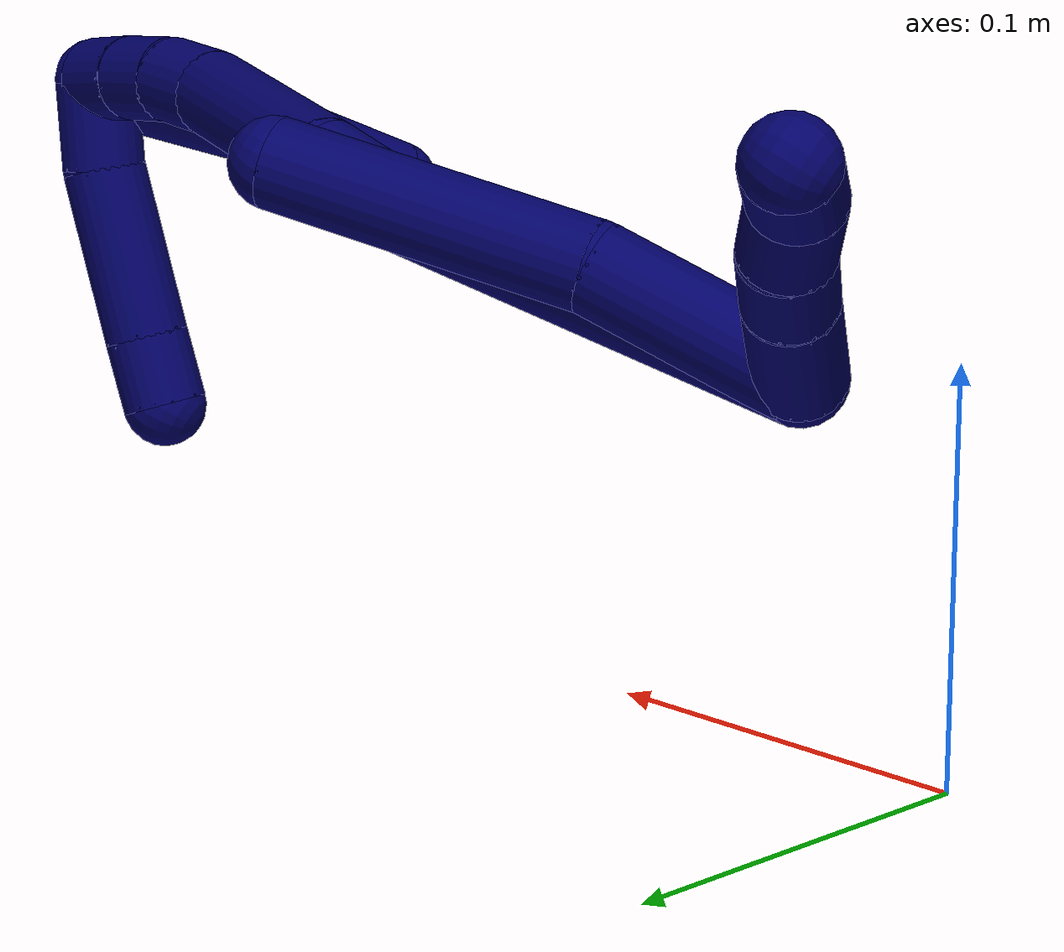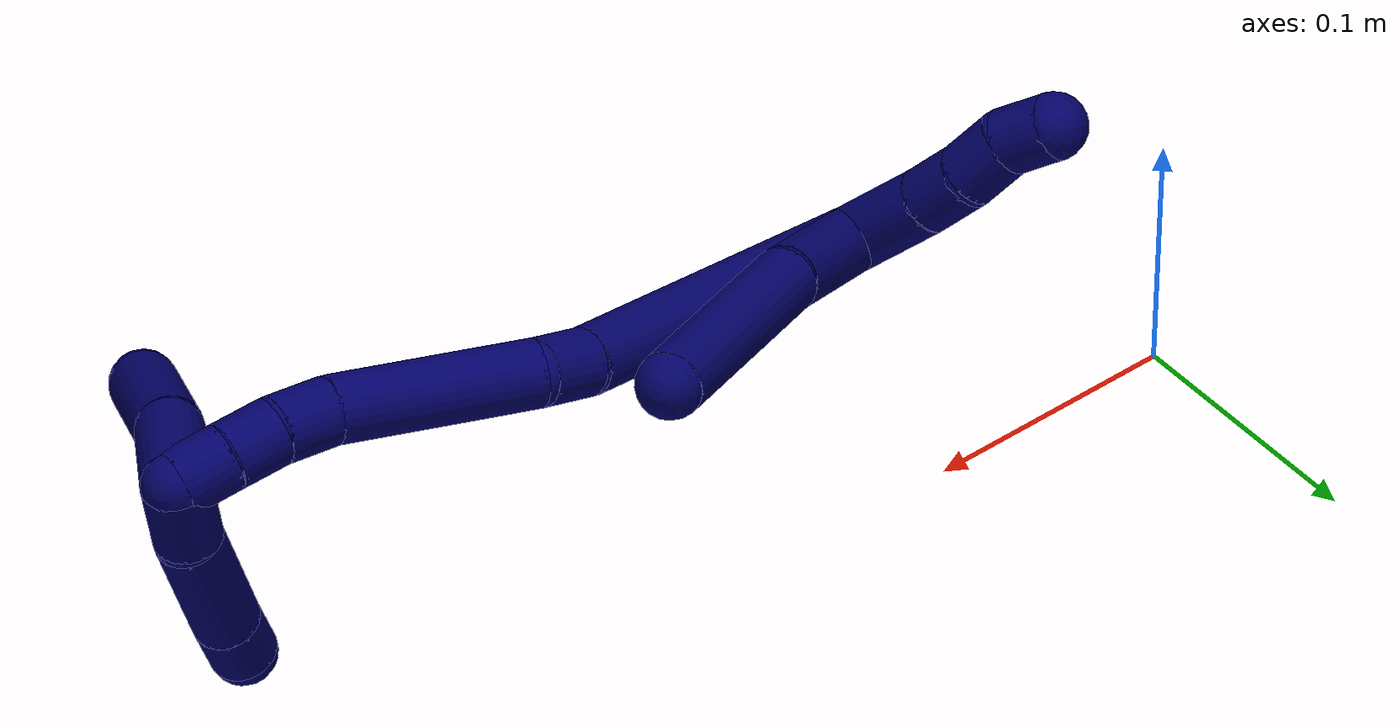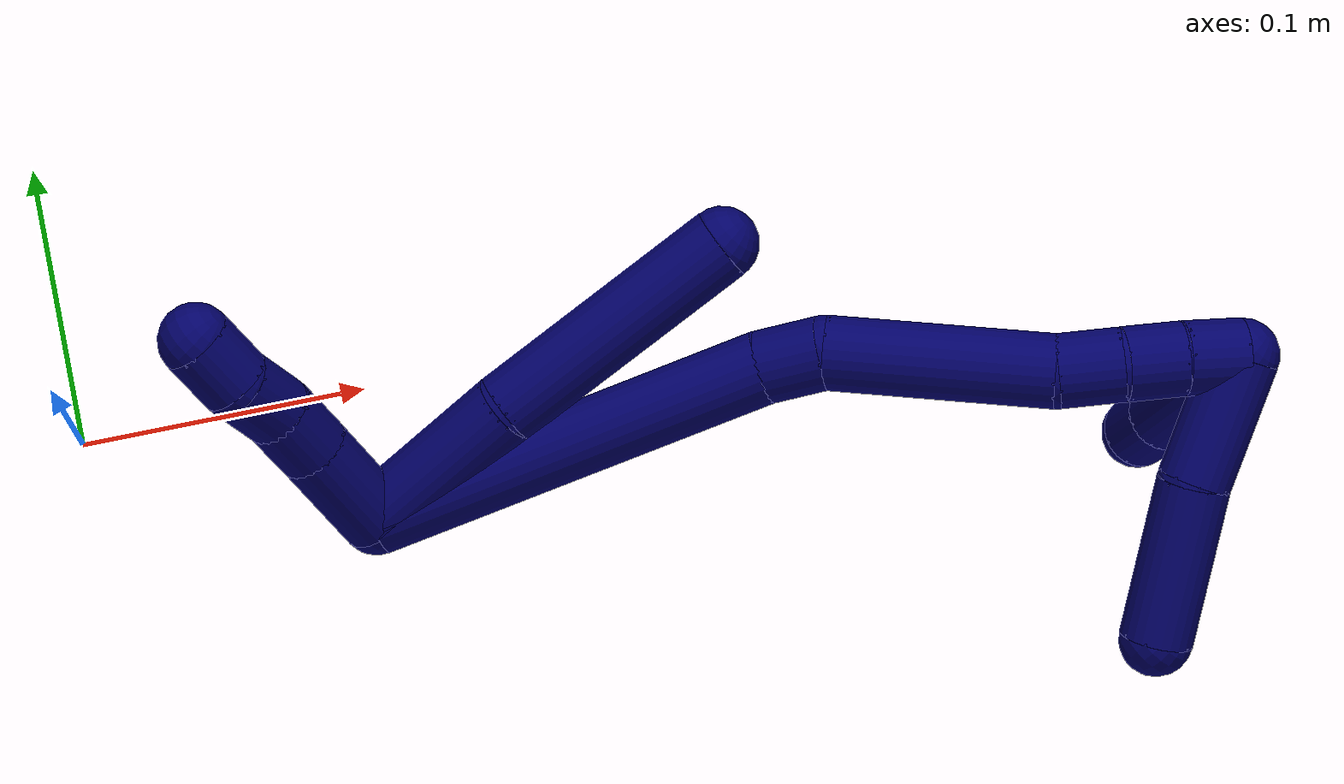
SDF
<sdf version="1.7">
 <world name="default">
  <model name="7">
   <static>0</static>
   <link name="7">
    <collision name="collision-cylinder-e_1_2_8">
     <pose>0.00272 0.000692 0.029652 -0.02332 0.09145 -0.001067</pose>
     <geometry><cylinder><radius>0.0125</radius><length>0.05957</length></cylinder></geometry>
     <surface>
      <friction><ode><mu>1.16</mu><mu2>1.16</mu2><slip1>0</slip1><slip2>0</slip2></ode></friction>
      <contact><ode><kp>1e+06</kp><kd>1</kd><max_vel>0</max_vel><min_depth>0.001</min_depth></ode></contact>
     </surface>
    </collision>
    <visual name="visual-cylinder-e_1_2_8">
     <pose>0.00272 0.000692 0.029652 -0.02332 0.09145 -0.001067</pose>
     <geometry><cylinder><radius>0.0125</radius><length>0.05957</length></cylinder></geometry>
     <material><ambient>0.003922 0 0.403922 1</ambient></material>
    </visual>
    <collision name="collision-cylinder-e_2_8_6">
     <pose>0.016732 0.006585 0.102777 -0.119084 0.252399 -0.015126</pose>
     <geometry><cylinder><radius>0.0125</radius><length>0.09043</length></cylinder></geometry>
     <surface>
      <friction><ode><mu>1.16</mu><mu2>1.16</mu2><slip1>0</slip1><slip2>0</slip2></ode></friction>
      <contact><ode><kp>1e+06</kp><kd>1</kd><max_vel>0</max_vel><min_depth>0.001</min_depth></ode></contact>
     </surface>
    </collision>
    <visual name="visual-cylinder-e_2_8_6">
     <pose>0.016732 0.006585 0.102777 -0.119084 0.252399 -0.015126</pose>
     <geometry><cylinder><radius>0.0125</radius><length>0.09043</length></cylinder></geometry>
     <material><ambient>0.003922 0 0.403922 1</ambient></material>
    </visual>
    <collision name="collision-cylinder-e_1_2_9">
     <pose>-0.017896 0.003664 0.004578 -0.674944 -1.25416 0.497999</pose>
     <geometry><cylinder><radius>0.0125</radius><length>0.037665</length></cylinder></geometry>
     <surface>
      <friction><ode><mu>1.16</mu><mu2>1.16</mu2><slip1>0</slip1><slip2>0</slip2></ode></friction>
      <contact><ode><kp>1e+06</kp><kd>1</kd><max_vel>0</max_vel><min_depth>0.001</min_depth></ode></contact>
     </surface>
    </collision>
    <visual name="visual-cylinder-e_1_2_9">
     <pose>-0.017896 0.003664 0.004578 -0.674944 -1.25416 0.497999</pose>
     <geometry><cylinder><radius>0.0125</radius><length>0.037665</length></cylinder></geometry>
     <material><ambient>0.003922 0 0.403922 1</ambient></material>
    </visual>
    <collision name="collision-cylinder-e_2_9_10">
     <pose>-0.045725 0.008758 0.01174 -0.505365 -1.28185 0.380566</pose>
     <geometry><cylinder><radius>0.0125</radius><length>0.020724</length></cylinder></geometry>
     <surface>
      <friction><ode><mu>1.16</mu><mu2>1.16</mu2><slip1>0</slip1><slip2>0</slip2></ode></friction>
      <contact><ode><kp>1e+06</kp><kd>1</kd><max_vel>0</max_vel><min_depth>0.001</min_depth></ode></contact>
     </surface>
    </collision>
    <visual name="visual-cylinder-e_2_9_10">
     <pose>-0.045725 0.008758 0.01174 -0.505365 -1.28185 0.380566</pose>
     <geometry><cylinder><radius>0.0125</radius><length>0.020724</length></cylinder></geometry>
     <material><ambient>0.003922 0 0.403922 1</ambient></material>
    </visual>
    <collision name="collision-cylinder-e_3_10_11">
     <pose>-0.06622 0.01035 0.015737 -0.114583 -1.43688 0.100207</pose>
     <geometry><cylinder><radius>0.0125</radius><length>0.021317</length></cylinder></geometry>
     <surface>
      <friction><ode><mu>1.16</mu><mu2>1.16</mu2><slip1>0</slip1><slip2>0</slip2></ode></friction>
      <contact><ode><kp>1e+06</kp><kd>1</kd><max_vel>0</max_vel><min_depth>0.001</min_depth></ode></contact>
     </surface>
    </collision>
    <visual name="visual-cylinder-e_3_10_11">
     <pose>-0.06622 0.01035 0.015737 -0.114583 -1.43688 0.100207</pose>
     <geometry><cylinder><radius>0.0125</radius><length>0.021317</length></cylinder></geometry>
     <material><ambient>0.003922 0 0.403922 1</ambient></material>
    </visual>
    <collision name="collision-cylinder-e_4_11_5">
     <pose>-0.086183 0.013912 0.018899 -1.09574 -1.18455 0.779156</pose>
     <geometry><cylinder><radius>0.0125</radius><length>0.020294</length></cylinder></geometry>
     <surface>
      <friction><ode><mu>1.16</mu><mu2>1.16</mu2><slip1>0</slip1><slip2>0</slip2></ode></friction>
      <contact><ode><kp>1e+06</kp><kd>1</kd><max_vel>0</max_vel><min_depth>0.001</min_depth></ode></contact>
     </surface>
    </collision>
    <visual name="visual-cylinder-e_4_11_5">
     <pose>-0.086183 0.013912 0.018899 -1.09574 -1.18455 0.779156</pose>
     <geometry><cylinder><radius>0.0125</radius><length>0.020294</length></cylinder></geometry>
     <material><ambient>0.003922 0 0.403922 1</ambient></material>
    </visual>
    <collision name="collision-cylinder-e_1_2_12">
     <pose>0.028169 -0.007598 0.063567 0.118961 0.414513 0.025043</pose>
     <geometry><cylinder><radius>0.0125</radius><length>0.139886</length></cylinder></geometry>
     <surface>
      <friction><ode><mu>1.16</mu><mu2>1.16</mu2><slip1>0</slip1><slip2>0</slip2></ode></friction>
      <contact><ode><kp>1e+06</kp><kd>1</kd><max_vel>0</max_vel><min_depth>0.001</min_depth></ode></contact>
     </surface>
    </collision>
    <visual name="visual-cylinder-e_1_2_12">
     <pose>0.028169 -0.007598 0.063567 0.118961 0.414513 0.025043</pose>
     <geometry><cylinder><radius>0.0125</radius><length>0.139886</length></cylinder></geometry>
     <material><ambient>0.003922 0 0.403922 1</ambient></material>
    </visual>
    <collision name="collision-cylinder-e_2_12_13">
     <pose>0.060658 -0.018118 0.136512 0.302126 0.414346 0.063969</pose>
     <geometry><cylinder><radius>0.0125</radius><length>0.02146</length></cylinder></geometry>
     <surface>
      <friction><ode><mu>1.16</mu><mu2>1.16</mu2><slip1>0</slip1><slip2>0</slip2></ode></friction>
      <contact><ode><kp>1e+06</kp><kd>1</kd><max_vel>0</max_vel><min_depth>0.001</min_depth></ode></contact>
     </surface>
    </collision>
    <visual name="visual-cylinder-e_2_12_13">
     <pose>0.060658 -0.018118 0.136512 0.302126 0.414346 0.063969</pose>
     <geometry><cylinder><radius>0.0125</radius><length>0.02146</length></cylinder></geometry>
     <material><ambient>0.003922 0 0.403922 1</ambient></material>
    </visual>
    <collision name="collision-cylinder-e_3_13_14">
     <pose>0.089019 -0.03663 0.171243 0.551261 0.679442 0.199255</pose>
     <geometry><cylinder><radius>0.0125</radius><length>0.076519</length></cylinder></geometry>
     <surface>
      <friction><ode><mu>1.16</mu><mu2>1.16</mu2><slip1>0</slip1><slip2>0</slip2></ode></friction>
      <contact><ode><kp>1e+06</kp><kd>1</kd><max_vel>0</max_vel><min_depth>0.001</min_depth></ode></contact>
     </surface>
    </collision>
    <visual name="visual-cylinder-e_3_13_14">
     <pose>0.089019 -0.03663 0.171243 0.551261 0.679442 0.199255</pose>
     <geometry><cylinder><radius>0.0125</radius><length>0.076519</length></cylinder></geometry>
     <material><ambient>0.003922 0 0.403922 1</ambient></material>
    </visual>
    <collision name="collision-cylinder-e_4_14_15">
     <pose>0.119797 -0.054709 0.204853 0.293003 0.663274 0.101538</pose>
     <geometry><cylinder><radius>0.0125</radius><length>0.021887</length></cylinder></geometry>
     <surface>
      <friction><ode><mu>1.16</mu><mu2>1.16</mu2><slip1>0</slip1><slip2>0</slip2></ode></friction>
      <contact><ode><kp>1e+06</kp><kd>1</kd><max_vel>0</max_vel><min_depth>0.001</min_depth></ode></contact>
     </surface>
    </collision>
    <visual name="visual-cylinder-e_4_14_15">
     <pose>0.119797 -0.054709 0.204853 0.293003 0.663274 0.101538</pose>
     <geometry><cylinder><radius>0.0125</radius><length>0.021887</length></cylinder></geometry>
     <material><ambient>0.003922 0 0.403922 1</ambient></material>
    </visual>
    <collision name="collision-cylinder-e_5_15_16">
     <pose>0.133694 -0.058457 0.219999 0.180493 0.796301 0.076088</pose>
     <geometry><cylinder><radius>0.0125</radius><length>0.020031</length></cylinder></geometry>
     <surface>
      <friction><ode><mu>1.16</mu><mu2>1.16</mu2><slip1>0</slip1><slip2>0</slip2></ode></friction>
      <contact><ode><kp>1e+06</kp><kd>1</kd><max_vel>0</max_vel><min_depth>0.001</min_depth></ode></contact>
     </surface>
    </collision>
    <visual name="visual-cylinder-e_5_15_16">
     <pose>0.133694 -0.058457 0.219999 0.180493 0.796301 0.076088</pose>
     <geometry><cylinder><radius>0.0125</radius><length>0.020031</length></cylinder></geometry>
     <material><ambient>0.003922 0 0.403922 1</ambient></material>
    </visual>
    <collision name="collision-cylinder-e_6_16_1">
     <pose>0.148539 -0.060946 0.233338 0.18873 0.86394 0.08721</pose>
     <geometry><cylinder><radius>0.0125</radius><length>0.020217</length></cylinder></geometry>
     <surface>
      <friction><ode><mu>1.16</mu><mu2>1.16</mu2><slip1>0</slip1><slip2>0</slip2></ode></friction>
      <contact><ode><kp>1e+06</kp><kd>1</kd><max_vel>0</max_vel><min_depth>0.001</min_depth></ode></contact>
     </surface>
    </collision>
    <visual name="visual-cylinder-e_6_16_1">
     <pose>0.148539 -0.060946 0.233338 0.18873 0.86394 0.08721</pose>
     <geometry><cylinder><radius>0.0125</radius><length>0.020217</length></cylinder></geometry>
     <material><ambient>0.003922 0 0.403922 1</ambient></material>
    </visual>
    <collision name="collision-cylinder-e_1_1_17">
     <pose>0.16421 -0.054674 0.232221 -2.36027 0.643014 -1.3601</pose>
     <geometry><cylinder><radius>0.0125</radius><length>0.026629</length></cylinder></geometry>
     <surface>
      <friction><ode><mu>1.16</mu><mu2>1.16</mu2><slip1>0</slip1><slip2>0</slip2></ode></friction>
      <contact><ode><kp>1e+06</kp><kd>1</kd><max_vel>0</max_vel><min_depth>0.001</min_depth></ode></contact>
     </surface>
    </collision>
    <visual name="visual-cylinder-e_1_1_17">
     <pose>0.16421 -0.054674 0.232221 -2.36027 0.643014 -1.3601</pose>
     <geometry><cylinder><radius>0.0125</radius><length>0.026629</length></cylinder></geometry>
     <material><ambient>0.003922 0 0.403922 1</ambient></material>
    </visual>
    <collision name="collision-cylinder-e_2_17_18">
     <pose>0.185148 -0.03416 0.206097 -2.53018 0.519263 -1.39927</pose>
     <geometry><cylinder><radius>0.0125</radius><length>0.052211</length></cylinder></geometry>
     <surface>
      <friction><ode><mu>1.16</mu><mu2>1.16</mu2><slip1>0</slip1><slip2>0</slip2></ode></friction>
      <contact><ode><kp>1e+06</kp><kd>1</kd><max_vel>0</max_vel><min_depth>0.001</min_depth></ode></contact>
     </surface>
    </collision>
    <visual name="visual-cylinder-e_2_17_18">
     <pose>0.185148 -0.03416 0.206097 -2.53018 0.519263 -1.39927</pose>
     <geometry><cylinder><radius>0.0125</radius><length>0.052211</length></cylinder></geometry>
     <material><ambient>0.003922 0 0.403922 1</ambient></material>
    </visual>
    <collision name="collision-cylinder-e_3_18_4">
     <pose>0.203013 -0.015826 0.179827 -2.53727 0.482655 -1.33674</pose>
     <geometry><cylinder><radius>0.0125</radius><length>0.02116</length></cylinder></geometry>
     <surface>
      <friction><ode><mu>1.16</mu><mu2>1.16</mu2><slip1>0</slip1><slip2>0</slip2></ode></friction>
      <contact><ode><kp>1e+06</kp><kd>1</kd><max_vel>0</max_vel><min_depth>0.001</min_depth></ode></contact>
     </surface>
    </collision>
    <visual name="visual-cylinder-e_3_18_4">
     <pose>0.203013 -0.015826 0.179827 -2.53727 0.482655 -1.33674</pose>
     <geometry><cylinder><radius>0.0125</radius><length>0.02116</length></cylinder></geometry>
     <material><ambient>0.003922 0 0.403922 1</ambient></material>
    </visual>
    <collision name="collision-cylinder-e_1_1_19">
     <pose>0.160229 -0.072529 0.220346 2.6523 0.179795 0.693006</pose>
     <geometry><cylinder><radius>0.0125</radius><length>0.044771</length></cylinder></geometry>
     <surface>
      <friction><ode><mu>1.16</mu><mu2>1.16</mu2><slip1>0</slip1><slip2>0</slip2></ode></friction>
      <contact><ode><kp>1e+06</kp><kd>1</kd><max_vel>0</max_vel><min_depth>0.001</min_depth></ode></contact>
     </surface>
    </collision>
    <visual name="visual-cylinder-e_1_1_19">
     <pose>0.160229 -0.072529 0.220346 2.6523 0.179795 0.693006</pose>
     <geometry><cylinder><radius>0.0125</radius><length>0.044771</length></cylinder></geometry>
     <material><ambient>0.003922 0 0.403922 1</ambient></material>
    </visual>
    <collision name="collision-cylinder-e_2_19_3">
     <pose>0.17387 -0.095013 0.178047 2.65365 0.356524 1.25303</pose>
     <geometry><cylinder><radius>0.0125</radius><length>0.055229</length></cylinder></geometry>
     <surface>
      <friction><ode><mu>1.16</mu><mu2>1.16</mu2><slip1>0</slip1><slip2>0</slip2></ode></friction>
      <contact><ode><kp>1e+06</kp><kd>1</kd><max_vel>0</max_vel><min_depth>0.001</min_depth></ode></contact>
     </surface>
    </collision>
    <visual name="visual-cylinder-e_2_19_3">
     <pose>0.17387 -0.095013 0.178047 2.65365 0.356524 1.25303</pose>
     <geometry><cylinder><radius>0.0125</radius><length>0.055229</length></cylinder></geometry>
     <material><ambient>0.003922 0 0.403922 1</ambient></material>
    </visual>
    <collision name="collision-sphere-3">
     <pose>0.183508 -0.107145 0.155189 0 -0 0</pose>
     <geometry><sphere><radius>0.0125</radius></sphere></geometry>
     <surface>
      <friction><ode><mu>1.16</mu><mu2>1.16</mu2><slip1>0</slip1><slip2>0</slip2></ode></friction>
      <contact><ode><kp>1e+06</kp><kd>1</kd><max_vel>0</max_vel><min_depth>0.001</min_depth></ode></contact>
     </surface>
    </collision>
    <visual name="visual-sphere-3">
     <pose>0.183508 -0.107145 0.155189 0 -0 0</pose>
     <geometry><sphere><radius>0.0125</radius></sphere></geometry>
     <material><ambient>0.003922 0 0.403922 1</ambient></material>
    </visual>
    <collision name="collision-sphere-19">
     <pose>0.164232 -0.082881 0.200905 0 -0 0</pose>
     <geometry><sphere><radius>0.0125</radius></sphere></geometry>
     <surface>
      <friction><ode><mu>1.16</mu><mu2>1.16</mu2><slip1>0</slip1><slip2>0</slip2></ode></friction>
      <contact><ode><kp>1e+06</kp><kd>1</kd><max_vel>0</max_vel><min_depth>0.001</min_depth></ode></contact>
     </surface>
    </collision>
    <visual name="visual-sphere-19">
     <pose>0.164232 -0.082881 0.200905 0 -0 0</pose>
     <geometry><sphere><radius>0.0125</radius></sphere></geometry>
     <material><ambient>0.003922 0 0.403922 1</ambient></material>
    </visual>
    <collision name="collision-sphere-11">
     <pose>-0.076783 0.010512 0.017151 0 -0 0</pose>
     <geometry><sphere><radius>0.0125</radius></sphere></geometry>
     <surface>
      <friction><ode><mu>1.16</mu><mu2>1.16</mu2><slip1>0</slip1><slip2>0</slip2></ode></friction>
      <contact><ode><kp>1e+06</kp><kd>1</kd><max_vel>0</max_vel><min_depth>0.001</min_depth></ode></contact>
     </surface>
    </collision>
    <visual name="visual-sphere-11">
     <pose>-0.076783 0.010512 0.017151 0 -0 0</pose>
     <geometry><sphere><radius>0.0125</radius></sphere></geometry>
     <material><ambient>0.003922 0 0.403922 1</ambient></material>
    </visual>
    <collision name="collision-sphere-10">
     <pose>-0.055657 0.010187 0.014323 0 -0 0</pose>
     <geometry><sphere><radius>0.0125</radius></sphere></geometry>
     <surface>
      <friction><ode><mu>1.16</mu><mu2>1.16</mu2><slip1>0</slip1><slip2>0</slip2></ode></friction>
      <contact><ode><kp>1e+06</kp><kd>1</kd><max_vel>0</max_vel><min_depth>0.001</min_depth></ode></contact>
     </surface>
    </collision>
    <visual name="visual-sphere-10">
     <pose>-0.055657 0.010187 0.014323 0 -0 0</pose>
     <geometry><sphere><radius>0.0125</radius></sphere></geometry>
     <material><ambient>0.003922 0 0.403922 1</ambient></material>
    </visual>
    <collision name="collision-sphere-6">
     <pose>0.028023 0.011786 0.14625 0 -0 0</pose>
     <geometry><sphere><radius>0.0125</radius></sphere></geometry>
     <surface>
      <friction><ode><mu>1.16</mu><mu2>1.16</mu2><slip1>0</slip1><slip2>0</slip2></ode></friction>
      <contact><ode><kp>1e+06</kp><kd>1</kd><max_vel>0</max_vel><min_depth>0.001</min_depth></ode></contact>
     </surface>
    </collision>
    <visual name="visual-sphere-6">
     <pose>0.028023 0.011786 0.14625 0 -0 0</pose>
     <geometry><sphere><radius>0.0125</radius></sphere></geometry>
     <material><ambient>0.003922 0 0.403922 1</ambient></material>
    </visual>
    <collision name="collision-sphere-9">
     <pose>-0.035793 0.007328 0.009156 0 -0 0</pose>
     <geometry><sphere><radius>0.0125</radius></sphere></geometry>
     <surface>
      <friction><ode><mu>1.16</mu><mu2>1.16</mu2><slip1>0</slip1><slip2>0</slip2></ode></friction>
      <contact><ode><kp>1e+06</kp><kd>1</kd><max_vel>0</max_vel><min_depth>0.001</min_depth></ode></contact>
     </surface>
    </collision>
    <visual name="visual-sphere-9">
     <pose>-0.035793 0.007328 0.009156 0 -0 0</pose>
     <geometry><sphere><radius>0.0125</radius></sphere></geometry>
     <material><ambient>0.003922 0 0.403922 1</ambient></material>
    </visual>
    <collision name="collision-sphere-2">
     <geometry><sphere><radius>0.0125</radius></sphere></geometry>
     <surface>
      <friction><ode><mu>1.16</mu><mu2>1.16</mu2><slip1>0</slip1><slip2>0</slip2></ode></friction>
      <contact><ode><kp>1e+06</kp><kd>1</kd><max_vel>0</max_vel><min_depth>0.001</min_depth></ode></contact>
     </surface>
    </collision>
    <visual name="visual-sphere-2">
     <geometry><sphere><radius>0.0125</radius></sphere></geometry>
     <material><ambient>0.003922 0 0.403922 1</ambient></material>
    </visual>
    <collision name="collision-sphere-8">
     <pose>0.00544 0.001383 0.059305 0 -0 0</pose>
     <geometry><sphere><radius>0.0125</radius></sphere></geometry>
     <surface>
      <friction><ode><mu>1.16</mu><mu2>1.16</mu2><slip1>0</slip1><slip2>0</slip2></ode></friction>
      <contact><ode><kp>1e+06</kp><kd>1</kd><max_vel>0</max_vel><min_depth>0.001</min_depth></ode></contact>
     </surface>
    </collision>
    <visual name="visual-sphere-8">
     <pose>0.00544 0.001383 0.059305 0 -0 0</pose>
     <geometry><sphere><radius>0.0125</radius></sphere></geometry>
     <material><ambient>0.003922 0 0.403922 1</ambient></material>
    </visual>
    <collision name="collision-sphere-5">
     <pose>-0.095583 0.017311 0.020648 0 -0 0</pose>
     <geometry><sphere><radius>0.0125</radius></sphere></geometry>
     <surface>
      <friction><ode><mu>1.16</mu><mu2>1.16</mu2><slip1>0</slip1><slip2>0</slip2></ode></friction>
      <contact><ode><kp>1e+06</kp><kd>1</kd><max_vel>0</max_vel><min_depth>0.001</min_depth></ode></contact>
     </surface>
    </collision>
    <visual name="visual-sphere-5">
     <pose>-0.095583 0.017311 0.020648 0 -0 0</pose>
     <geometry><sphere><radius>0.0125</radius></sphere></geometry>
     <material><ambient>0.003922 0 0.403922 1</ambient></material>
    </visual>
    <collision name="collision-sphere-12">
     <pose>0.056338 -0.015196 0.127135 0 -0 0</pose>
     <geometry><sphere><radius>0.0125</radius></sphere></geometry>
     <surface>
      <friction><ode><mu>1.16</mu><mu2>1.16</mu2><slip1>0</slip1><slip2>0</slip2></ode></friction>
      <contact><ode><kp>1e+06</kp><kd>1</kd><max_vel>0</max_vel><min_depth>0.001</min_depth></ode></contact>
     </surface>
    </collision>
    <visual name="visual-sphere-12">
     <pose>0.056338 -0.015196 0.127135 0 -0 0</pose>
     <geometry><sphere><radius>0.0125</radius></sphere></geometry>
     <material><ambient>0.003922 0 0.403922 1</ambient></material>
    </visual>
    <collision name="collision-sphere-13">
     <pose>0.064978 -0.021041 0.145889 0 -0 0</pose>
     <geometry><sphere><radius>0.0125</radius></sphere></geometry>
     <surface>
      <friction><ode><mu>1.16</mu><mu2>1.16</mu2><slip1>0</slip1><slip2>0</slip2></ode></friction>
      <contact><ode><kp>1e+06</kp><kd>1</kd><max_vel>0</max_vel><min_depth>0.001</min_depth></ode></contact>
     </surface>
    </collision>
    <visual name="visual-sphere-13">
     <pose>0.064978 -0.021041 0.145889 0 -0 0</pose>
     <geometry><sphere><radius>0.0125</radius></sphere></geometry>
     <material><ambient>0.003922 0 0.403922 1</ambient></material>
    </visual>
    <collision name="collision-sphere-14">
     <pose>0.113059 -0.052218 0.196597 0 -0 0</pose>
     <geometry><sphere><radius>0.0125</radius></sphere></geometry>
     <surface>
      <friction><ode><mu>1.16</mu><mu2>1.16</mu2><slip1>0</slip1><slip2>0</slip2></ode></friction>
      <contact><ode><kp>1e+06</kp><kd>1</kd><max_vel>0</max_vel><min_depth>0.001</min_depth></ode></contact>
     </surface>
    </collision>
    <visual name="visual-sphere-14">
     <pose>0.113059 -0.052218 0.196597 0 -0 0</pose>
     <geometry><sphere><radius>0.0125</radius></sphere></geometry>
     <material><ambient>0.003922 0 0.403922 1</ambient></material>
    </visual>
    <collision name="collision-sphere-15">
     <pose>0.126535 -0.0572 0.213108 0 -0 0</pose>
     <geometry><sphere><radius>0.0125</radius></sphere></geometry>
     <surface>
      <friction><ode><mu>1.16</mu><mu2>1.16</mu2><slip1>0</slip1><slip2>0</slip2></ode></friction>
      <contact><ode><kp>1e+06</kp><kd>1</kd><max_vel>0</max_vel><min_depth>0.001</min_depth></ode></contact>
     </surface>
    </collision>
    <visual name="visual-sphere-15">
     <pose>0.126535 -0.0572 0.213108 0 -0 0</pose>
     <geometry><sphere><radius>0.0125</radius></sphere></geometry>
     <material><ambient>0.003922 0 0.403922 1</ambient></material>
    </visual>
    <collision name="collision-sphere-16">
     <pose>0.140853 -0.059715 0.226889 0 -0 0</pose>
     <geometry><sphere><radius>0.0125</radius></sphere></geometry>
     <surface>
      <friction><ode><mu>1.16</mu><mu2>1.16</mu2><slip1>0</slip1><slip2>0</slip2></ode></friction>
      <contact><ode><kp>1e+06</kp><kd>1</kd><max_vel>0</max_vel><min_depth>0.001</min_depth></ode></contact>
     </surface>
    </collision>
    <visual name="visual-sphere-16">
     <pose>0.140853 -0.059715 0.226889 0 -0 0</pose>
     <geometry><sphere><radius>0.0125</radius></sphere></geometry>
     <material><ambient>0.003922 0 0.403922 1</ambient></material>
    </visual>
    <collision name="collision-sphere-1">
     <pose>0.156226 -0.062178 0.239786 0 -0 0</pose>
     <geometry><sphere><radius>0.0125</radius></sphere></geometry>
     <surface>
      <friction><ode><mu>1.16</mu><mu2>1.16</mu2><slip1>0</slip1><slip2>0</slip2></ode></friction>
      <contact><ode><kp>1e+06</kp><kd>1</kd><max_vel>0</max_vel><min_depth>0.001</min_depth></ode></contact>
     </surface>
    </collision>
    <visual name="visual-sphere-1">
     <pose>0.156226 -0.062178 0.239786 0 -0 0</pose>
     <geometry><sphere><radius>0.0125</radius></sphere></geometry>
     <material><ambient>0.003922 0 0.403922 1</ambient></material>
    </visual>
    <collision name="collision-sphere-18">
     <pose>0.198102 -0.02115 0.187538 0 -0 0</pose>
     <geometry><sphere><radius>0.0125</radius></sphere></geometry>
     <surface>
      <friction><ode><mu>1.16</mu><mu2>1.16</mu2><slip1>0</slip1><slip2>0</slip2></ode></friction>
      <contact><ode><kp>1e+06</kp><kd>1</kd><max_vel>0</max_vel><min_depth>0.001</min_depth></ode></contact>
     </surface>
    </collision>
    <visual name="visual-sphere-18">
     <pose>0.198102 -0.02115 0.187538 0 -0 0</pose>
     <geometry><sphere><radius>0.0125</radius></sphere></geometry>
     <material><ambient>0.003922 0 0.403922 1</ambient></material>
    </visual>
    <collision name="collision-sphere-17">
     <pose>0.172193 -0.04717 0.224656 0 -0 0</pose>
     <geometry><sphere><radius>0.0125</radius></sphere></geometry>
     <surface>
      <friction><ode><mu>1.16</mu><mu2>1.16</mu2><slip1>0</slip1><slip2>0</slip2></ode></friction>
      <contact><ode><kp>1e+06</kp><kd>1</kd><max_vel>0</max_vel><min_depth>0.001</min_depth></ode></contact>
     </surface>
    </collision>
    <visual name="visual-sphere-17">
     <pose>0.172193 -0.04717 0.224656 0 -0 0</pose>
     <geometry><sphere><radius>0.0125</radius></sphere></geometry>
     <material><ambient>0.003922 0 0.403922 1</ambient></material>
    </visual>
    <collision name="collision-sphere-4">
     <pose>0.207923 -0.010501 0.172116 0 -0 0</pose>
     <geometry><sphere><radius>0.0125</radius></sphere></geometry>
     <surface>
      <friction><ode><mu>1.16</mu><mu2>1.16</mu2><slip1>0</slip1><slip2>0</slip2></ode></friction>
      <contact><ode><kp>1e+06</kp><kd>1</kd><max_vel>0</max_vel><min_depth>0.001</min_depth></ode></contact>
     </surface>
    </collision>
    <visual name="visual-sphere-4">
     <pose>0.207923 -0.010501 0.172116 0 -0 0</pose>
     <geometry><sphere><radius>0.0125</radius></sphere></geometry>
     <material><ambient>0.003922 0 0.403922 1</ambient></material>
    </visual>
    <inertial>
     <pose>0.069815 -0.02462 0.121568 0 -0 0</pose>
     <mass>0.75</mass>
     <inertia><ixx>0.00038</ixx><ixy>0</ixy><ixz>0</ixz><iyy>0.00038</iyy><iyz>0</iyz><izz>-9.3e-05</izz></inertia>
    </inertial>
   </link>
   <pose>0.097047 -0.057972 0.06989 -0.83486 0.77235 -0.522686</pose>
  </model>
 </world>
</sdf>
